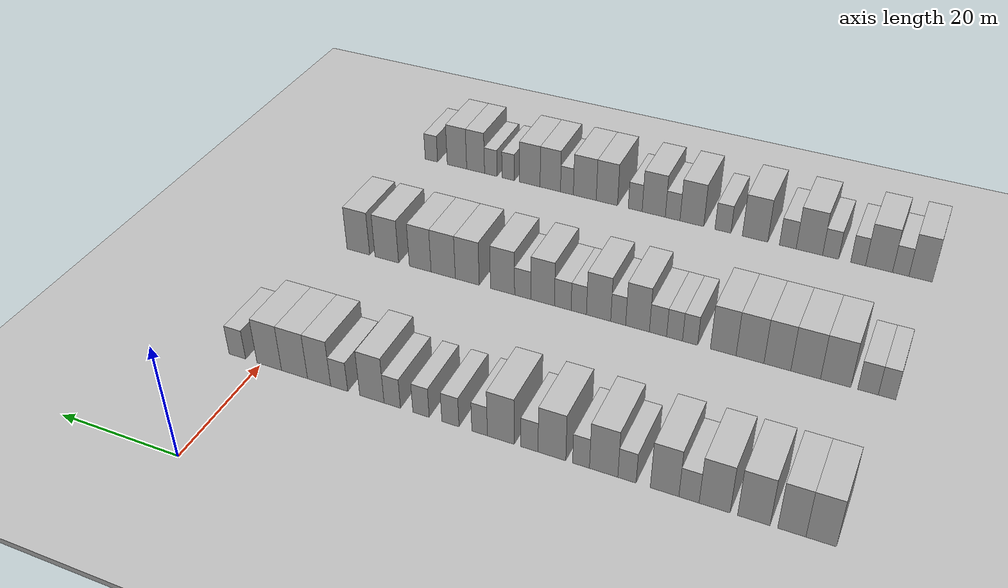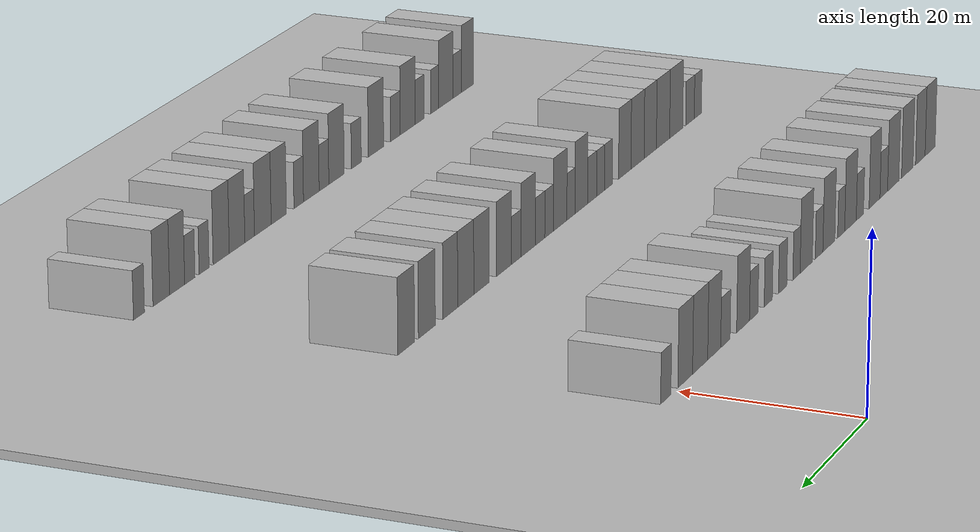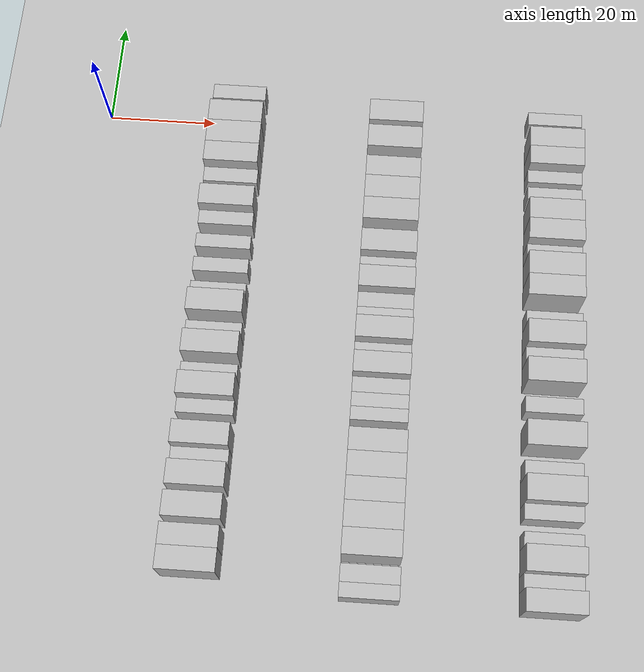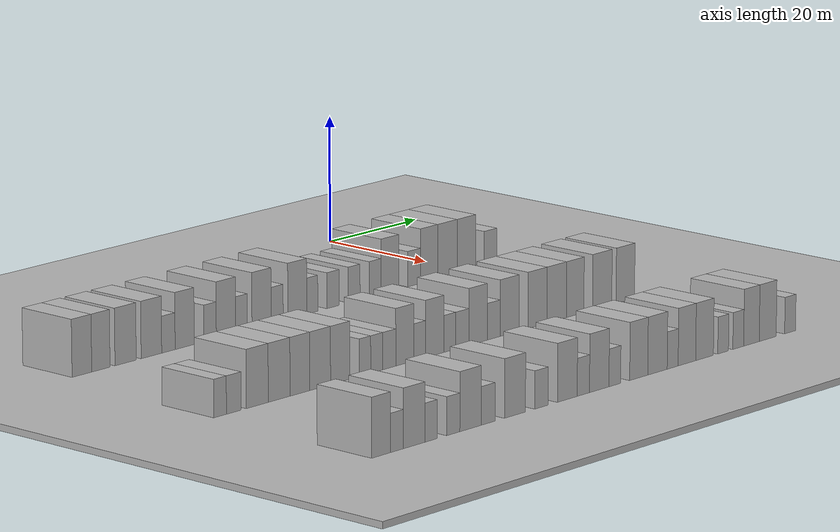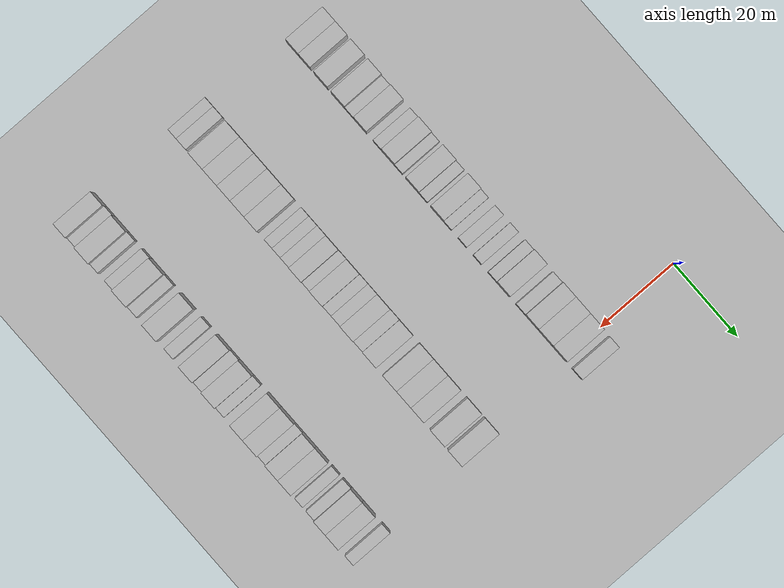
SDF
<sdf version="1.6">
 <world name="default">
  <include><name>ground_plane_1</name><uri>model://HANNAS_ground_plane</uri></include>
  <include>
   <name>ground_plane_2</name>
   <uri>model://HANNAS_ground_plane</uri>
   <pose>100 0 0  0 0 0</pose>
  </include>
  <model name="building_48">
   <static>1</static>
   <pose>25.0000 -84.4528 0 0.000000 0.000000 0.000000</pose>
   <link name="link">
    <pose>0 0 4.50 0 0 0</pose>
    <collision name="collision"><geometry><box><size>10.0000 3.9260 9.0000</size></box></geometry></collision>
    <visual name="visual">
     <cast_shadows>0</cast_shadows>
     <geometry><box><size>10.0000 3.9260 9.0000</size></box></geometry>
     <material>
      <script>
       <uri>model://HANNAS_wall/materials/scripts</uri>
       <uri>model://HANNAS_wall/materials/textures</uri>
       <name>vrc/HANNAS_wall</name>
      </script>
     </material>
    </visual>
   </link>
  </model>
  <model name="building_49">
   <static>1</static>
   <pose>25.0000 -80.6491 0 0.000000 0.000000 0.000000</pose>
   <link name="link">
    <pose>0 0 4.50 0 0 0</pose>
    <collision name="collision"><geometry><box><size>10.0000 3.6814 9.0000</size></box></geometry></collision>
    <visual name="visual">
     <cast_shadows>0</cast_shadows>
     <geometry><box><size>10.0000 3.6814 9.0000</size></box></geometry>
     <material>
      <script>
       <uri>model://HANNAS_wall/materials/scripts</uri>
       <uri>model://HANNAS_wall/materials/textures</uri>
       <name>vrc/HANNAS_wall</name>
      </script>
     </material>
    </visual>
   </link>
  </model>
  <model name="building_50">
   <static>1</static>
   <pose>25.0000 -75.6490 0 0.000000 0.000000 0.000000</pose>
   <link name="link">
    <pose>0 0 4.50 0 0 0</pose>
    <collision name="collision"><geometry><box><size>10.0000 4.3187 9.0000</size></box></geometry></collision>
    <visual name="visual">
     <cast_shadows>0</cast_shadows>
     <geometry><box><size>10.0000 4.3187 9.0000</size></box></geometry>
     <material>
      <script>
       <uri>model://HANNAS_wall/materials/scripts</uri>
       <uri>model://HANNAS_wall/materials/textures</uri>
       <name>vrc/HANNAS_wall</name>
      </script>
     </material>
    </visual>
   </link>
  </model>
  <model name="building_51">
   <static>1</static>
   <pose>25.0000 -70.3851 0 0.000000 0.000000 0.000000</pose>
   <link name="link">
    <pose>0 0 4.50 0 0 0</pose>
    <collision name="collision"><geometry><box><size>10.0000 4.2092 9.0000</size></box></geometry></collision>
    <visual name="visual">
     <cast_shadows>0</cast_shadows>
     <geometry><box><size>10.0000 4.2092 9.0000</size></box></geometry>
     <material>
      <script>
       <uri>model://HANNAS_wall/materials/scripts</uri>
       <uri>model://HANNAS_wall/materials/textures</uri>
       <name>vrc/HANNAS_wall</name>
      </script>
     </material>
    </visual>
   </link>
  </model>
  <model name="building_52">
   <static>1</static>
   <pose>25.0000 -66.8908 0 0.000000 0.000000 0.000000</pose>
   <link name="link">
    <pose>0 0 3.00 0 0 0</pose>
    <collision name="collision"><geometry><box><size>10.0000 2.7795 6.0000</size></box></geometry></collision>
    <visual name="visual">
     <cast_shadows>0</cast_shadows>
     <geometry><box><size>10.0000 2.7795 6.0000</size></box></geometry>
     <material>
      <script>
       <uri>model://HANNAS_wall/materials/scripts</uri>
       <uri>model://HANNAS_wall/materials/textures</uri>
       <name>vrc/HANNAS_wall</name>
      </script>
     </material>
    </visual>
   </link>
  </model>
  <model name="building_53">
   <static>1</static>
   <pose>25.0000 -63.5101 0 0.000000 0.000000 0.000000</pose>
   <link name="link">
    <pose>0 0 4.50 0 0 0</pose>
    <collision name="collision"><geometry><box><size>10.0000 3.9818 9.0000</size></box></geometry></collision>
    <visual name="visual">
     <cast_shadows>0</cast_shadows>
     <geometry><box><size>10.0000 3.9818 9.0000</size></box></geometry>
     <material>
      <script>
       <uri>model://HANNAS_wall/materials/scripts</uri>
       <uri>model://HANNAS_wall/materials/textures</uri>
       <name>vrc/HANNAS_wall</name>
      </script>
     </material>
    </visual>
   </link>
  </model>
  <model name="building_54">
   <static>1</static>
   <pose>25.0000 -58.2209 0 0.000000 0.000000 0.000000</pose>
   <link name="link">
    <pose>0 0 3.00 0 0 0</pose>
    <collision name="collision"><geometry><box><size>10.0000 2.5965 6.0000</size></box></geometry></collision>
    <visual name="visual">
     <cast_shadows>0</cast_shadows>
     <geometry><box><size>10.0000 2.5965 6.0000</size></box></geometry>
     <material>
      <script>
       <uri>model://HANNAS_wall/materials/scripts</uri>
       <uri>model://HANNAS_wall/materials/textures</uri>
       <name>vrc/HANNAS_wall</name>
      </script>
     </material>
    </visual>
   </link>
  </model>
  <model name="building_55">
   <static>1</static>
   <pose>25.0000 -54.8793 0 0.000000 0.000000 0.000000</pose>
   <link name="link">
    <pose>0 0 4.50 0 0 0</pose>
    <collision name="collision"><geometry><box><size>10.0000 4.0868 9.0000</size></box></geometry></collision>
    <visual name="visual">
     <cast_shadows>0</cast_shadows>
     <geometry><box><size>10.0000 4.0868 9.0000</size></box></geometry>
     <material>
      <script>
       <uri>model://HANNAS_wall/materials/scripts</uri>
       <uri>model://HANNAS_wall/materials/textures</uri>
       <name>vrc/HANNAS_wall</name>
      </script>
     </material>
    </visual>
   </link>
  </model>
  <model name="building_56">
   <static>1</static>
   <pose>25.0000 -51.6076 0 0.000000 0.000000 0.000000</pose>
   <link name="link">
    <pose>0 0 3.00 0 0 0</pose>
    <collision name="collision"><geometry><box><size>10.0000 2.4565 6.0000</size></box></geometry></collision>
    <visual name="visual">
     <cast_shadows>0</cast_shadows>
     <geometry><box><size>10.0000 2.4565 6.0000</size></box></geometry>
     <material>
      <script>
       <uri>model://HANNAS_wall/materials/scripts</uri>
       <uri>model://HANNAS_wall/materials/textures</uri>
       <name>vrc/HANNAS_wall</name>
      </script>
     </material>
    </visual>
   </link>
  </model>
  <model name="building_57">
   <static>1</static>
   <pose>25.0000 -47.3260 0 0.000000 0.000000 0.000000</pose>
   <link name="link">
    <pose>0 0 4.50 0 0 0</pose>
    <collision name="collision"><geometry><box><size>10.0000 4.1068 9.0000</size></box></geometry></collision>
    <visual name="visual">
     <cast_shadows>0</cast_shadows>
     <geometry><box><size>10.0000 4.1068 9.0000</size></box></geometry>
     <material>
      <script>
       <uri>model://HANNAS_wall/materials/scripts</uri>
       <uri>model://HANNAS_wall/materials/textures</uri>
       <name>vrc/HANNAS_wall</name>
      </script>
     </material>
    </visual>
   </link>
  </model>
  <model name="building_58">
   <static>1</static>
   <pose>25.0000 -43.9816 0 0.000000 0.000000 0.000000</pose>
   <link name="link">
    <pose>0 0 3.00 0 0 0</pose>
    <collision name="collision"><geometry><box><size>10.0000 2.5820 6.0000</size></box></geometry></collision>
    <visual name="visual">
     <cast_shadows>0</cast_shadows>
     <geometry><box><size>10.0000 2.5820 6.0000</size></box></geometry>
     <material>
      <script>
       <uri>model://HANNAS_wall/materials/scripts</uri>
       <uri>model://HANNAS_wall/materials/textures</uri>
       <name>vrc/HANNAS_wall</name>
      </script>
     </material>
    </visual>
   </link>
  </model>
  <model name="building_59">
   <static>1</static>
   <pose>25.0000 -39.6407 0 0.000000 0.000000 0.000000</pose>
   <link name="link">
    <pose>0 0 4.50 0 0 0</pose>
    <collision name="collision"><geometry><box><size>10.0000 4.0999 9.0000</size></box></geometry></collision>
    <visual name="visual">
     <cast_shadows>0</cast_shadows>
     <geometry><box><size>10.0000 4.0999 9.0000</size></box></geometry>
     <material>
      <script>
       <uri>model://HANNAS_wall/materials/scripts</uri>
       <uri>model://HANNAS_wall/materials/textures</uri>
       <name>vrc/HANNAS_wall</name>
      </script>
     </material>
    </visual>
   </link>
  </model>
  <model name="building_60">
   <static>1</static>
   <pose>25.0000 -36.3896 0 0.000000 0.000000 0.000000</pose>
   <link name="link">
    <pose>0 0 3.00 0 0 0</pose>
    <collision name="collision"><geometry><box><size>10.0000 2.4024 6.0000</size></box></geometry></collision>
    <visual name="visual">
     <cast_shadows>0</cast_shadows>
     <geometry><box><size>10.0000 2.4024 6.0000</size></box></geometry>
     <material>
      <script>
       <uri>model://HANNAS_wall/materials/scripts</uri>
       <uri>model://HANNAS_wall/materials/textures</uri>
       <name>vrc/HANNAS_wall</name>
      </script>
     </material>
    </visual>
   </link>
  </model>
  <model name="building_61">
   <static>1</static>
   <pose>25.0000 -31.8369 0 0.000000 0.000000 0.000000</pose>
   <link name="link">
    <pose>0 0 3.00 0 0 0</pose>
    <collision name="collision"><geometry><box><size>10.0000 2.7029 6.0000</size></box></geometry></collision>
    <visual name="visual">
     <cast_shadows>0</cast_shadows>
     <geometry><box><size>10.0000 2.7029 6.0000</size></box></geometry>
     <material>
      <script>
       <uri>model://HANNAS_wall/materials/scripts</uri>
       <uri>model://HANNAS_wall/materials/textures</uri>
       <name>vrc/HANNAS_wall</name>
      </script>
     </material>
    </visual>
   </link>
  </model>
  <model name="building_62">
   <static>1</static>
   <pose>25.0000 -27.1818 0 0.000000 0.000000 0.000000</pose>
   <link name="link">
    <pose>0 0 3.00 0 0 0</pose>
    <collision name="collision"><geometry><box><size>10.0000 2.6073 6.0000</size></box></geometry></collision>
    <visual name="visual">
     <cast_shadows>0</cast_shadows>
     <geometry><box><size>10.0000 2.6073 6.0000</size></box></geometry>
     <material>
      <script>
       <uri>model://HANNAS_wall/materials/scripts</uri>
       <uri>model://HANNAS_wall/materials/textures</uri>
       <name>vrc/HANNAS_wall</name>
      </script>
     </material>
    </visual>
   </link>
  </model>
  <model name="building_63">
   <static>1</static>
   <pose>25.0000 -22.5452 0 0.000000 0.000000 0.000000</pose>
   <link name="link">
    <pose>0 0 3.00 0 0 0</pose>
    <collision name="collision"><geometry><box><size>10.0000 2.6658 6.0000</size></box></geometry></collision>
    <visual name="visual">
     <cast_shadows>0</cast_shadows>
     <geometry><box><size>10.0000 2.6658 6.0000</size></box></geometry>
     <material>
      <script>
       <uri>model://HANNAS_wall/materials/scripts</uri>
       <uri>model://HANNAS_wall/materials/textures</uri>
       <name>vrc/HANNAS_wall</name>
      </script>
     </material>
    </visual>
   </link>
  </model>
  <model name="building_64">
   <static>1</static>
   <pose>25.0000 -19.2137 0 0.000000 0.000000 0.000000</pose>
   <link name="link">
    <pose>0 0 4.50 0 0 0</pose>
    <collision name="collision"><geometry><box><size>10.0000 3.9973 9.0000</size></box></geometry></collision>
    <visual name="visual">
     <cast_shadows>0</cast_shadows>
     <geometry><box><size>10.0000 3.9973 9.0000</size></box></geometry>
     <material>
      <script>
       <uri>model://HANNAS_wall/materials/scripts</uri>
       <uri>model://HANNAS_wall/materials/textures</uri>
       <name>vrc/HANNAS_wall</name>
      </script>
     </material>
    </visual>
   </link>
  </model>
  <model name="building_65">
   <static>1</static>
   <pose>25.0000 -13.7819 0 0.000000 0.000000 0.000000</pose>
   <link name="link">
    <pose>0 0 3.00 0 0 0</pose>
    <collision name="collision"><geometry><box><size>10.0000 2.8661 6.0000</size></box></geometry></collision>
    <visual name="visual">
     <cast_shadows>0</cast_shadows>
     <geometry><box><size>10.0000 2.8661 6.0000</size></box></geometry>
     <material>
      <script>
       <uri>model://HANNAS_wall/materials/scripts</uri>
       <uri>model://HANNAS_wall/materials/textures</uri>
       <name>vrc/HANNAS_wall</name>
      </script>
     </material>
    </visual>
   </link>
  </model>
  <model name="building_66">
   <static>1</static>
   <pose>25.0000 -10.3824 0 0.000000 0.000000 0.000000</pose>
   <link name="link">
    <pose>0 0 4.50 0 0 0</pose>
    <collision name="collision"><geometry><box><size>10.0000 3.9331 9.0000</size></box></geometry></collision>
    <visual name="visual">
     <cast_shadows>0</cast_shadows>
     <geometry><box><size>10.0000 3.9331 9.0000</size></box></geometry>
     <material>
      <script>
       <uri>model://HANNAS_wall/materials/scripts</uri>
       <uri>model://HANNAS_wall/materials/textures</uri>
       <name>vrc/HANNAS_wall</name>
      </script>
     </material>
    </visual>
   </link>
  </model>
  <model name="building_67">
   <static>1</static>
   <pose>25.0000 -6.1778 0 0.000000 0.000000 0.000000</pose>
   <link name="link">
    <pose>0 0 4.50 0 0 0</pose>
    <collision name="collision"><geometry><box><size>10.0000 4.4761 9.0000</size></box></geometry></collision>
    <visual name="visual">
     <cast_shadows>0</cast_shadows>
     <geometry><box><size>10.0000 4.4761 9.0000</size></box></geometry>
     <material>
      <script>
       <uri>model://HANNAS_wall/materials/scripts</uri>
       <uri>model://HANNAS_wall/materials/textures</uri>
       <name>vrc/HANNAS_wall</name>
      </script>
     </material>
    </visual>
   </link>
  </model>
  <model name="building_68">
   <static>1</static>
   <pose>25.0000 -1.7875 0 0.000000 0.000000 0.000000</pose>
   <link name="link">
    <pose>0 0 4.50 0 0 0</pose>
    <collision name="collision"><geometry><box><size>10.0000 4.3045 9.0000</size></box></geometry></collision>
    <visual name="visual">
     <cast_shadows>0</cast_shadows>
     <geometry><box><size>10.0000 4.3045 9.0000</size></box></geometry>
     <material>
      <script>
       <uri>model://HANNAS_wall/materials/scripts</uri>
       <uri>model://HANNAS_wall/materials/textures</uri>
       <name>vrc/HANNAS_wall</name>
      </script>
     </material>
    </visual>
   </link>
  </model>
  <model name="building_69">
   <static>1</static>
   <pose>25.0000 3.8394 0 0.000000 0.000000 0.000000</pose>
   <link name="link">
    <pose>0 0 3.00 0 0 0</pose>
    <collision name="collision"><geometry><box><size>10.0000 2.9492 6.0000</size></box></geometry></collision>
    <visual name="visual">
     <cast_shadows>0</cast_shadows>
     <geometry><box><size>10.0000 2.9492 6.0000</size></box></geometry>
     <material>
      <script>
       <uri>model://HANNAS_wall/materials/scripts</uri>
       <uri>model://HANNAS_wall/materials/textures</uri>
       <name>vrc/HANNAS_wall</name>
      </script>
     </material>
    </visual>
   </link>
  </model>
  <model name="building_179">
   <static>1</static>
   <pose>55.0000 -87.3339 0 0.000000 0.000000 0.000000</pose>
   <link name="link">
    <pose>0 0 3.00 0 0 0</pose>
    <collision name="collision"><geometry><box><size>10.0000 2.5084 6.0000</size></box></geometry></collision>
    <visual name="visual">
     <cast_shadows>0</cast_shadows>
     <geometry><box><size>10.0000 2.5084 6.0000</size></box></geometry>
     <material>
      <script>
       <uri>model://HANNAS_wall/materials/scripts</uri>
       <uri>model://HANNAS_wall/materials/textures</uri>
       <name>vrc/HANNAS_wall</name>
      </script>
     </material>
    </visual>
   </link>
  </model>
  <model name="building_180">
   <static>1</static>
   <pose>55.0000 -84.5908 0 0.000000 0.000000 0.000000</pose>
   <link name="link">
    <pose>0 0 3.00 0 0 0</pose>
    <collision name="collision"><geometry><box><size>10.0000 2.9777 6.0000</size></box></geometry></collision>
    <visual name="visual">
     <cast_shadows>0</cast_shadows>
     <geometry><box><size>10.0000 2.9777 6.0000</size></box></geometry>
     <material>
      <script>
       <uri>model://HANNAS_wall/materials/scripts</uri>
       <uri>model://HANNAS_wall/materials/textures</uri>
       <name>vrc/HANNAS_wall</name>
      </script>
     </material>
    </visual>
   </link>
  </model>
  <model name="building_181">
   <static>1</static>
   <pose>55.0000 -79.8754 0 0.000000 0.000000 0.000000</pose>
   <link name="link">
    <pose>0 0 4.50 0 0 0</pose>
    <collision name="collision"><geometry><box><size>10.0000 4.4532 9.0000</size></box></geometry></collision>
    <visual name="visual">
     <cast_shadows>0</cast_shadows>
     <geometry><box><size>10.0000 4.4532 9.0000</size></box></geometry>
     <material>
      <script>
       <uri>model://HANNAS_wall/materials/scripts</uri>
       <uri>model://HANNAS_wall/materials/textures</uri>
       <name>vrc/HANNAS_wall</name>
      </script>
     </material>
    </visual>
   </link>
  </model>
  <model name="building_182">
   <static>1</static>
   <pose>55.0000 -75.4326 0 0.000000 0.000000 0.000000</pose>
   <link name="link">
    <pose>0 0 4.50 0 0 0</pose>
    <collision name="collision"><geometry><box><size>10.0000 4.4323 9.0000</size></box></geometry></collision>
    <visual name="visual">
     <cast_shadows>0</cast_shadows>
     <geometry><box><size>10.0000 4.4323 9.0000</size></box></geometry>
     <material>
      <script>
       <uri>model://HANNAS_wall/materials/scripts</uri>
       <uri>model://HANNAS_wall/materials/textures</uri>
       <name>vrc/HANNAS_wall</name>
      </script>
     </material>
    </visual>
   </link>
  </model>
  <model name="building_183">
   <static>1</static>
   <pose>55.0000 -71.1804 0 0.000000 0.000000 0.000000</pose>
   <link name="link">
    <pose>0 0 4.50 0 0 0</pose>
    <collision name="collision"><geometry><box><size>10.0000 4.0722 9.0000</size></box></geometry></collision>
    <visual name="visual">
     <cast_shadows>0</cast_shadows>
     <geometry><box><size>10.0000 4.0722 9.0000</size></box></geometry>
     <material>
      <script>
       <uri>model://HANNAS_wall/materials/scripts</uri>
       <uri>model://HANNAS_wall/materials/textures</uri>
       <name>vrc/HANNAS_wall</name>
      </script>
     </material>
    </visual>
   </link>
  </model>
  <model name="building_184">
   <static>1</static>
   <pose>55.0000 -66.9999 0 0.000000 0.000000 0.000000</pose>
   <link name="link">
    <pose>0 0 4.50 0 0 0</pose>
    <collision name="collision"><geometry><box><size>10.0000 4.2887 9.0000</size></box></geometry></collision>
    <visual name="visual">
     <cast_shadows>0</cast_shadows>
     <geometry><box><size>10.0000 4.2887 9.0000</size></box></geometry>
     <material>
      <script>
       <uri>model://HANNAS_wall/materials/scripts</uri>
       <uri>model://HANNAS_wall/materials/textures</uri>
       <name>vrc/HANNAS_wall</name>
      </script>
     </material>
    </visual>
   </link>
  </model>
  <model name="building_185">
   <static>1</static>
   <pose>55.0000 -62.8555 0 0.000000 0.000000 0.000000</pose>
   <link name="link">
    <pose>0 0 4.50 0 0 0</pose>
    <collision name="collision"><geometry><box><size>10.0000 4.0001 9.0000</size></box></geometry></collision>
    <visual name="visual">
     <cast_shadows>0</cast_shadows>
     <geometry><box><size>10.0000 4.0001 9.0000</size></box></geometry>
     <material>
      <script>
       <uri>model://HANNAS_wall/materials/scripts</uri>
       <uri>model://HANNAS_wall/materials/textures</uri>
       <name>vrc/HANNAS_wall</name>
      </script>
     </material>
    </visual>
   </link>
  </model>
  <model name="building_186">
   <static>1</static>
   <pose>55.0000 -57.6517 0 0.000000 0.000000 0.000000</pose>
   <link name="link">
    <pose>0 0 3.00 0 0 0</pose>
    <collision name="collision"><geometry><box><size>10.0000 2.4075 6.0000</size></box></geometry></collision>
    <visual name="visual">
     <cast_shadows>0</cast_shadows>
     <geometry><box><size>10.0000 2.4075 6.0000</size></box></geometry>
     <material>
      <script>
       <uri>model://HANNAS_wall/materials/scripts</uri>
       <uri>model://HANNAS_wall/materials/textures</uri>
       <name>vrc/HANNAS_wall</name>
      </script>
     </material>
    </visual>
   </link>
  </model>
  <model name="building_187">
   <static>1</static>
   <pose>55.0000 -55.1774 0 0.000000 0.000000 0.000000</pose>
   <link name="link">
    <pose>0 0 3.00 0 0 0</pose>
    <collision name="collision"><geometry><box><size>10.0000 2.5412 6.0000</size></box></geometry></collision>
    <visual name="visual">
     <cast_shadows>0</cast_shadows>
     <geometry><box><size>10.0000 2.5412 6.0000</size></box></geometry>
     <material>
      <script>
       <uri>model://HANNAS_wall/materials/scripts</uri>
       <uri>model://HANNAS_wall/materials/textures</uri>
       <name>vrc/HANNAS_wall</name>
      </script>
     </material>
    </visual>
   </link>
  </model>
  <model name="building_188">
   <static>1</static>
   <pose>55.0000 -52.5172 0 0.000000 0.000000 0.000000</pose>
   <link name="link">
    <pose>0 0 3.00 0 0 0</pose>
    <collision name="collision"><geometry><box><size>10.0000 2.7793 6.0000</size></box></geometry></collision>
    <visual name="visual">
     <cast_shadows>0</cast_shadows>
     <geometry><box><size>10.0000 2.7793 6.0000</size></box></geometry>
     <material>
      <script>
       <uri>model://HANNAS_wall/materials/scripts</uri>
       <uri>model://HANNAS_wall/materials/textures</uri>
       <name>vrc/HANNAS_wall</name>
      </script>
     </material>
    </visual>
   </link>
  </model>
  <model name="building_189">
   <static>1</static>
   <pose>55.0000 -49.1889 0 0.000000 0.000000 0.000000</pose>
   <link name="link">
    <pose>0 0 4.50 0 0 0</pose>
    <collision name="collision"><geometry><box><size>10.0000 3.8774 9.0000</size></box></geometry></collision>
    <visual name="visual">
     <cast_shadows>0</cast_shadows>
     <geometry><box><size>10.0000 3.8774 9.0000</size></box></geometry>
     <material>
      <script>
       <uri>model://HANNAS_wall/materials/scripts</uri>
       <uri>model://HANNAS_wall/materials/textures</uri>
       <name>vrc/HANNAS_wall</name>
      </script>
     </material>
    </visual>
   </link>
  </model>
  <model name="building_190">
   <static>1</static>
   <pose>55.0000 -46.0195 0 0.000000 0.000000 0.000000</pose>
   <link name="link">
    <pose>0 0 3.00 0 0 0</pose>
    <collision name="collision"><geometry><box><size>10.0000 2.4613 6.0000</size></box></geometry></collision>
    <visual name="visual">
     <cast_shadows>0</cast_shadows>
     <geometry><box><size>10.0000 2.4613 6.0000</size></box></geometry>
     <material>
      <script>
       <uri>model://HANNAS_wall/materials/scripts</uri>
       <uri>model://HANNAS_wall/materials/textures</uri>
       <name>vrc/HANNAS_wall</name>
      </script>
     </material>
    </visual>
   </link>
  </model>
  <model name="building_191">
   <static>1</static>
   <pose>55.0000 -42.7622 0 0.000000 0.000000 0.000000</pose>
   <link name="link">
    <pose>0 0 4.50 0 0 0</pose>
    <collision name="collision"><geometry><box><size>10.0000 4.0533 9.0000</size></box></geometry></collision>
    <visual name="visual">
     <cast_shadows>0</cast_shadows>
     <geometry><box><size>10.0000 4.0533 9.0000</size></box></geometry>
     <material>
      <script>
       <uri>model://HANNAS_wall/materials/scripts</uri>
       <uri>model://HANNAS_wall/materials/textures</uri>
       <name>vrc/HANNAS_wall</name>
      </script>
     </material>
    </visual>
   </link>
  </model>
  <model name="building_192">
   <static>1</static>
   <pose>55.0000 -39.4451 0 0.000000 0.000000 0.000000</pose>
   <link name="link">
    <pose>0 0 3.00 0 0 0</pose>
    <collision name="collision"><geometry><box><size>10.0000 2.5809 6.0000</size></box></geometry></collision>
    <visual name="visual">
     <cast_shadows>0</cast_shadows>
     <geometry><box><size>10.0000 2.5809 6.0000</size></box></geometry>
     <material>
      <script>
       <uri>model://HANNAS_wall/materials/scripts</uri>
       <uri>model://HANNAS_wall/materials/textures</uri>
       <name>vrc/HANNAS_wall</name>
      </script>
     </material>
    </visual>
   </link>
  </model>
  <model name="building_193">
   <static>1</static>
   <pose>55.0000 -36.7395 0 0.000000 0.000000 0.000000</pose>
   <link name="link">
    <pose>0 0 3.00 0 0 0</pose>
    <collision name="collision"><geometry><box><size>10.0000 2.8303 6.0000</size></box></geometry></collision>
    <visual name="visual">
     <cast_shadows>0</cast_shadows>
     <geometry><box><size>10.0000 2.8303 6.0000</size></box></geometry>
     <material>
      <script>
       <uri>model://HANNAS_wall/materials/scripts</uri>
       <uri>model://HANNAS_wall/materials/textures</uri>
       <name>vrc/HANNAS_wall</name>
      </script>
     </material>
    </visual>
   </link>
  </model>
  <model name="building_194">
   <static>1</static>
   <pose>55.0000 -33.2910 0 0.000000 0.000000 0.000000</pose>
   <link name="link">
    <pose>0 0 4.50 0 0 0</pose>
    <collision name="collision"><geometry><box><size>10.0000 4.0667 9.0000</size></box></geometry></collision>
    <visual name="visual">
     <cast_shadows>0</cast_shadows>
     <geometry><box><size>10.0000 4.0667 9.0000</size></box></geometry>
     <material>
      <script>
       <uri>model://HANNAS_wall/materials/scripts</uri>
       <uri>model://HANNAS_wall/materials/textures</uri>
       <name>vrc/HANNAS_wall</name>
      </script>
     </material>
    </visual>
   </link>
  </model>
  <model name="building_195">
   <static>1</static>
   <pose>55.0000 -29.8455 0 0.000000 0.000000 0.000000</pose>
   <link name="link">
    <pose>0 0 3.00 0 0 0</pose>
    <collision name="collision"><geometry><box><size>10.0000 2.8243 6.0000</size></box></geometry></collision>
    <visual name="visual">
     <cast_shadows>0</cast_shadows>
     <geometry><box><size>10.0000 2.8243 6.0000</size></box></geometry>
     <material>
      <script>
       <uri>model://HANNAS_wall/materials/scripts</uri>
       <uri>model://HANNAS_wall/materials/textures</uri>
       <name>vrc/HANNAS_wall</name>
      </script>
     </material>
    </visual>
   </link>
  </model>
  <model name="building_196">
   <static>1</static>
   <pose>55.0000 -26.3149 0 0.000000 0.000000 0.000000</pose>
   <link name="link">
    <pose>0 0 4.50 0 0 0</pose>
    <collision name="collision"><geometry><box><size>10.0000 4.2370 9.0000</size></box></geometry></collision>
    <visual name="visual">
     <cast_shadows>0</cast_shadows>
     <geometry><box><size>10.0000 4.2370 9.0000</size></box></geometry>
     <material>
      <script>
       <uri>model://HANNAS_wall/materials/scripts</uri>
       <uri>model://HANNAS_wall/materials/textures</uri>
       <name>vrc/HANNAS_wall</name>
      </script>
     </material>
    </visual>
   </link>
  </model>
  <model name="building_197">
   <static>1</static>
   <pose>55.0000 -20.0473 0 0.000000 0.000000 0.000000</pose>
   <link name="link">
    <pose>0 0 4.50 0 0 0</pose>
    <collision name="collision"><geometry><box><size>10.0000 4.2982 9.0000</size></box></geometry></collision>
    <visual name="visual">
     <cast_shadows>0</cast_shadows>
     <geometry><box><size>10.0000 4.2982 9.0000</size></box></geometry>
     <material>
      <script>
       <uri>model://HANNAS_wall/materials/scripts</uri>
       <uri>model://HANNAS_wall/materials/textures</uri>
       <name>vrc/HANNAS_wall</name>
      </script>
     </material>
    </visual>
   </link>
  </model>
  <model name="building_198">
   <static>1</static>
   <pose>55.0000 -15.6903 0 0.000000 0.000000 0.000000</pose>
   <link name="link">
    <pose>0 0 4.50 0 0 0</pose>
    <collision name="collision"><geometry><box><size>10.0000 4.4159 9.0000</size></box></geometry></collision>
    <visual name="visual">
     <cast_shadows>0</cast_shadows>
     <geometry><box><size>10.0000 4.4159 9.0000</size></box></geometry>
     <material>
      <script>
       <uri>model://HANNAS_wall/materials/scripts</uri>
       <uri>model://HANNAS_wall/materials/textures</uri>
       <name>vrc/HANNAS_wall</name>
      </script>
     </material>
    </visual>
   </link>
  </model>
  <model name="building_199">
   <static>1</static>
   <pose>55.0000 -11.4758 0 0.000000 0.000000 0.000000</pose>
   <link name="link">
    <pose>0 0 4.50 0 0 0</pose>
    <collision name="collision"><geometry><box><size>10.0000 4.0132 9.0000</size></box></geometry></collision>
    <visual name="visual">
     <cast_shadows>0</cast_shadows>
     <geometry><box><size>10.0000 4.0132 9.0000</size></box></geometry>
     <material>
      <script>
       <uri>model://HANNAS_wall/materials/scripts</uri>
       <uri>model://HANNAS_wall/materials/textures</uri>
       <name>vrc/HANNAS_wall</name>
      </script>
     </material>
    </visual>
   </link>
  </model>
  <model name="building_200">
   <static>1</static>
   <pose>55.0000 -5.2403 0 0.000000 0.000000 0.000000</pose>
   <link name="link">
    <pose>0 0 4.50 0 0 0</pose>
    <collision name="collision"><geometry><box><size>10.0000 4.4578 9.0000</size></box></geometry></collision>
    <visual name="visual">
     <cast_shadows>0</cast_shadows>
     <geometry><box><size>10.0000 4.4578 9.0000</size></box></geometry>
     <material>
      <script>
       <uri>model://HANNAS_wall/materials/scripts</uri>
       <uri>model://HANNAS_wall/materials/textures</uri>
       <name>vrc/HANNAS_wall</name>
      </script>
     </material>
    </visual>
   </link>
  </model>
  <model name="building_201">
   <static>1</static>
   <pose>55.0000 0.1525 0 0.000000 0.000000 0.000000</pose>
   <link name="link">
    <pose>0 0 4.50 0 0 0</pose>
    <collision name="collision"><geometry><box><size>10.0000 4.3277 9.0000</size></box></geometry></collision>
    <visual name="visual">
     <cast_shadows>0</cast_shadows>
     <geometry><box><size>10.0000 4.3277 9.0000</size></box></geometry>
     <material>
      <script>
       <uri>model://HANNAS_wall/materials/scripts</uri>
       <uri>model://HANNAS_wall/materials/textures</uri>
       <name>vrc/HANNAS_wall</name>
      </script>
     </material>
    </visual>
   </link>
  </model>
  <model name="building_316">
   <static>1</static>
   <pose>85.0000 -87.3008 0 0.000000 0.000000 0.000000</pose>
   <link name="link">
    <pose>0 0 4.50 0 0 0</pose>
    <collision name="collision"><geometry><box><size>10.0000 3.7475 9.0000</size></box></geometry></collision>
    <visual name="visual">
     <cast_shadows>0</cast_shadows>
     <geometry><box><size>10.0000 3.7475 9.0000</size></box></geometry>
     <material>
      <script>
       <uri>model://HANNAS_wall/materials/scripts</uri>
       <uri>model://HANNAS_wall/materials/textures</uri>
       <name>vrc/HANNAS_wall</name>
      </script>
     </material>
    </visual>
   </link>
  </model>
  <model name="building_317">
   <static>1</static>
   <pose>85.0000 -84.1127 0 0.000000 0.000000 0.000000</pose>
   <link name="link">
    <pose>0 0 3.00 0 0 0</pose>
    <collision name="collision"><geometry><box><size>10.0000 2.6287 6.0000</size></box></geometry></collision>
    <visual name="visual">
     <cast_shadows>0</cast_shadows>
     <geometry><box><size>10.0000 2.6287 6.0000</size></box></geometry>
     <material>
      <script>
       <uri>model://HANNAS_wall/materials/scripts</uri>
       <uri>model://HANNAS_wall/materials/textures</uri>
       <name>vrc/HANNAS_wall</name>
      </script>
     </material>
    </visual>
   </link>
  </model>
  <model name="building_318">
   <static>1</static>
   <pose>85.0000 -80.6048 0 0.000000 0.000000 0.000000</pose>
   <link name="link">
    <pose>0 0 4.50 0 0 0</pose>
    <collision name="collision"><geometry><box><size>10.0000 4.3871 9.0000</size></box></geometry></collision>
    <visual name="visual">
     <cast_shadows>0</cast_shadows>
     <geometry><box><size>10.0000 4.3871 9.0000</size></box></geometry>
     <material>
      <script>
       <uri>model://HANNAS_wall/materials/scripts</uri>
       <uri>model://HANNAS_wall/materials/textures</uri>
       <name>vrc/HANNAS_wall</name>
      </script>
     </material>
    </visual>
   </link>
  </model>
  <model name="building_319">
   <static>1</static>
   <pose>85.0000 -77.1844 0 0.000000 0.000000 0.000000</pose>
   <link name="link">
    <pose>0 0 3.00 0 0 0</pose>
    <collision name="collision"><geometry><box><size>10.0000 2.4536 6.0000</size></box></geometry></collision>
    <visual name="visual">
     <cast_shadows>0</cast_shadows>
     <geometry><box><size>10.0000 2.4536 6.0000</size></box></geometry>
     <material>
      <script>
       <uri>model://HANNAS_wall/materials/scripts</uri>
       <uri>model://HANNAS_wall/materials/textures</uri>
       <name>vrc/HANNAS_wall</name>
      </script>
     </material>
    </visual>
   </link>
  </model>
  <model name="building_320">
   <static>1</static>
   <pose>85.0000 -72.6187 0 0.000000 0.000000 0.000000</pose>
   <link name="link">
    <pose>0 0 3.00 0 0 0</pose>
    <collision name="collision"><geometry><box><size>10.0000 2.6778 6.0000</size></box></geometry></collision>
    <visual name="visual">
     <cast_shadows>0</cast_shadows>
     <geometry><box><size>10.0000 2.6778 6.0000</size></box></geometry>
     <material>
      <script>
       <uri>model://HANNAS_wall/materials/scripts</uri>
       <uri>model://HANNAS_wall/materials/textures</uri>
       <name>vrc/HANNAS_wall</name>
      </script>
     </material>
    </visual>
   </link>
  </model>
  <model name="building_321">
   <static>1</static>
   <pose>85.0000 -69.0503 0 0.000000 0.000000 0.000000</pose>
   <link name="link">
    <pose>0 0 4.50 0 0 0</pose>
    <collision name="collision"><geometry><box><size>10.0000 4.4591 9.0000</size></box></geometry></collision>
    <visual name="visual">
     <cast_shadows>0</cast_shadows>
     <geometry><box><size>10.0000 4.4591 9.0000</size></box></geometry>
     <material>
      <script>
       <uri>model://HANNAS_wall/materials/scripts</uri>
       <uri>model://HANNAS_wall/materials/textures</uri>
       <name>vrc/HANNAS_wall</name>
      </script>
     </material>
    </visual>
   </link>
  </model>
  <model name="building_322">
   <static>1</static>
   <pose>85.0000 -65.3928 0 0.000000 0.000000 0.000000</pose>
   <link name="link">
    <pose>0 0 3.00 0 0 0</pose>
    <collision name="collision"><geometry><box><size>10.0000 2.8559 6.0000</size></box></geometry></collision>
    <visual name="visual">
     <cast_shadows>0</cast_shadows>
     <geometry><box><size>10.0000 2.8559 6.0000</size></box></geometry>
     <material>
      <script>
       <uri>model://HANNAS_wall/materials/scripts</uri>
       <uri>model://HANNAS_wall/materials/textures</uri>
       <name>vrc/HANNAS_wall</name>
      </script>
     </material>
    </visual>
   </link>
  </model>
  <model name="building_323">
   <static>1</static>
   <pose>85.0000 -59.7520 0 0.000000 0.000000 0.000000</pose>
   <link name="link">
    <pose>0 0 4.50 0 0 0</pose>
    <collision name="collision"><geometry><box><size>10.0000 4.4257 9.0000</size></box></geometry></collision>
    <visual name="visual">
     <cast_shadows>0</cast_shadows>
     <geometry><box><size>10.0000 4.4257 9.0000</size></box></geometry>
     <material>
      <script>
       <uri>model://HANNAS_wall/materials/scripts</uri>
       <uri>model://HANNAS_wall/materials/textures</uri>
       <name>vrc/HANNAS_wall</name>
      </script>
     </material>
    </visual>
   </link>
  </model>
  <model name="building_324">
   <static>1</static>
   <pose>85.0000 -54.1277 0 0.000000 0.000000 0.000000</pose>
   <link name="link">
    <pose>0 0 3.00 0 0 0</pose>
    <collision name="collision"><geometry><box><size>10.0000 2.8228 6.0000</size></box></geometry></collision>
    <visual name="visual">
     <cast_shadows>0</cast_shadows>
     <geometry><box><size>10.0000 2.8228 6.0000</size></box></geometry>
     <material>
      <script>
       <uri>model://HANNAS_wall/materials/scripts</uri>
       <uri>model://HANNAS_wall/materials/textures</uri>
       <name>vrc/HANNAS_wall</name>
      </script>
     </material>
    </visual>
   </link>
  </model>
  <model name="building_325">
   <static>1</static>
   <pose>85.0000 -48.5790 0 0.000000 0.000000 0.000000</pose>
   <link name="link">
    <pose>0 0 4.50 0 0 0</pose>
    <collision name="collision"><geometry><box><size>10.0000 4.2746 9.0000</size></box></geometry></collision>
    <visual name="visual">
     <cast_shadows>0</cast_shadows>
     <geometry><box><size>10.0000 4.2746 9.0000</size></box></geometry>
     <material>
      <script>
       <uri>model://HANNAS_wall/materials/scripts</uri>
       <uri>model://HANNAS_wall/materials/textures</uri>
       <name>vrc/HANNAS_wall</name>
      </script>
     </material>
    </visual>
   </link>
  </model>
  <model name="building_326">
   <static>1</static>
   <pose>85.0000 -45.1075 0 0.000000 0.000000 0.000000</pose>
   <link name="link">
    <pose>0 0 3.00 0 0 0</pose>
    <collision name="collision"><geometry><box><size>10.0000 2.6684 6.0000</size></box></geometry></collision>
    <visual name="visual">
     <cast_shadows>0</cast_shadows>
     <geometry><box><size>10.0000 2.6684 6.0000</size></box></geometry>
     <material>
      <script>
       <uri>model://HANNAS_wall/materials/scripts</uri>
       <uri>model://HANNAS_wall/materials/textures</uri>
       <name>vrc/HANNAS_wall</name>
      </script>
     </material>
    </visual>
   </link>
  </model>
  <model name="building_327">
   <static>1</static>
   <pose>85.0000 -41.6454 0 0.000000 0.000000 0.000000</pose>
   <link name="link">
    <pose>0 0 4.50 0 0 0</pose>
    <collision name="collision"><geometry><box><size>10.0000 4.2557 9.0000</size></box></geometry></collision>
    <visual name="visual">
     <cast_shadows>0</cast_shadows>
     <geometry><box><size>10.0000 4.2557 9.0000</size></box></geometry>
     <material>
      <script>
       <uri>model://HANNAS_wall/materials/scripts</uri>
       <uri>model://HANNAS_wall/materials/textures</uri>
       <name>vrc/HANNAS_wall</name>
      </script>
     </material>
    </visual>
   </link>
  </model>
  <model name="building_328">
   <static>1</static>
   <pose>85.0000 -38.2345 0 0.000000 0.000000 0.000000</pose>
   <link name="link">
    <pose>0 0 3.00 0 0 0</pose>
    <collision name="collision"><geometry><box><size>10.0000 2.5662 6.0000</size></box></geometry></collision>
    <visual name="visual">
     <cast_shadows>0</cast_shadows>
     <geometry><box><size>10.0000 2.5662 6.0000</size></box></geometry>
     <material>
      <script>
       <uri>model://HANNAS_wall/materials/scripts</uri>
       <uri>model://HANNAS_wall/materials/textures</uri>
       <name>vrc/HANNAS_wall</name>
      </script>
     </material>
    </visual>
   </link>
  </model>
  <model name="building_329">
   <static>1</static>
   <pose>85.0000 -32.9453 0 0.000000 0.000000 0.000000</pose>
   <link name="link">
    <pose>0 0 4.50 0 0 0</pose>
    <collision name="collision"><geometry><box><size>10.0000 4.0124 9.0000</size></box></geometry></collision>
    <visual name="visual">
     <cast_shadows>0</cast_shadows>
     <geometry><box><size>10.0000 4.0124 9.0000</size></box></geometry>
     <material>
      <script>
       <uri>model://HANNAS_wall/materials/scripts</uri>
       <uri>model://HANNAS_wall/materials/textures</uri>
       <name>vrc/HANNAS_wall</name>
      </script>
     </material>
    </visual>
   </link>
  </model>
  <model name="building_330">
   <static>1</static>
   <pose>85.0000 -28.7623 0 0.000000 0.000000 0.000000</pose>
   <link name="link">
    <pose>0 0 4.50 0 0 0</pose>
    <collision name="collision"><geometry><box><size>10.0000 4.3535 9.0000</size></box></geometry></collision>
    <visual name="visual">
     <cast_shadows>0</cast_shadows>
     <geometry><box><size>10.0000 4.3535 9.0000</size></box></geometry>
     <material>
      <script>
       <uri>model://HANNAS_wall/materials/scripts</uri>
       <uri>model://HANNAS_wall/materials/textures</uri>
       <name>vrc/HANNAS_wall</name>
      </script>
     </material>
    </visual>
   </link>
  </model>
  <model name="building_331">
   <static>1</static>
   <pose>85.0000 -25.3501 0 0.000000 0.000000 0.000000</pose>
   <link name="link">
    <pose>0 0 3.00 0 0 0</pose>
    <collision name="collision"><geometry><box><size>10.0000 2.4709 6.0000</size></box></geometry></collision>
    <visual name="visual">
     <cast_shadows>0</cast_shadows>
     <geometry><box><size>10.0000 2.4709 6.0000</size></box></geometry>
     <material>
      <script>
       <uri>model://HANNAS_wall/materials/scripts</uri>
       <uri>model://HANNAS_wall/materials/textures</uri>
       <name>vrc/HANNAS_wall</name>
      </script>
     </material>
    </visual>
   </link>
  </model>
  <model name="building_332">
   <static>1</static>
   <pose>85.0000 -22.1306 0 0.000000 0.000000 0.000000</pose>
   <link name="link">
    <pose>0 0 4.50 0 0 0</pose>
    <collision name="collision"><geometry><box><size>10.0000 3.9680 9.0000</size></box></geometry></collision>
    <visual name="visual">
     <cast_shadows>0</cast_shadows>
     <geometry><box><size>10.0000 3.9680 9.0000</size></box></geometry>
     <material>
      <script>
       <uri>model://HANNAS_wall/materials/scripts</uri>
       <uri>model://HANNAS_wall/materials/textures</uri>
       <name>vrc/HANNAS_wall</name>
      </script>
     </material>
    </visual>
   </link>
  </model>
  <model name="building_333">
   <static>1</static>
   <pose>85.0000 -18.1212 0 0.000000 0.000000 0.000000</pose>
   <link name="link">
    <pose>0 0 4.50 0 0 0</pose>
    <collision name="collision"><geometry><box><size>10.0000 4.0508 9.0000</size></box></geometry></collision>
    <visual name="visual">
     <cast_shadows>0</cast_shadows>
     <geometry><box><size>10.0000 4.0508 9.0000</size></box></geometry>
     <material>
      <script>
       <uri>model://HANNAS_wall/materials/scripts</uri>
       <uri>model://HANNAS_wall/materials/textures</uri>
       <name>vrc/HANNAS_wall</name>
      </script>
     </material>
    </visual>
   </link>
  </model>
  <model name="building_334">
   <static>1</static>
   <pose>85.0000 -13.8621 0 0.000000 0.000000 0.000000</pose>
   <link name="link">
    <pose>0 0 3.00 0 0 0</pose>
    <collision name="collision"><geometry><box><size>10.0000 2.4675 6.0000</size></box></geometry></collision>
    <visual name="visual">
     <cast_shadows>0</cast_shadows>
     <geometry><box><size>10.0000 2.4675 6.0000</size></box></geometry>
     <material>
      <script>
       <uri>model://HANNAS_wall/materials/scripts</uri>
       <uri>model://HANNAS_wall/materials/textures</uri>
       <name>vrc/HANNAS_wall</name>
      </script>
     </material>
    </visual>
   </link>
  </model>
  <model name="building_335">
   <static>1</static>
   <pose>85.0000 -10.3748 0 0.000000 0.000000 0.000000</pose>
   <link name="link">
    <pose>0 0 3.00 0 0 0</pose>
    <collision name="collision"><geometry><box><size>10.0000 2.5071 6.0000</size></box></geometry></collision>
    <visual name="visual">
     <cast_shadows>0</cast_shadows>
     <geometry><box><size>10.0000 2.5071 6.0000</size></box></geometry>
     <material>
      <script>
       <uri>model://HANNAS_wall/materials/scripts</uri>
       <uri>model://HANNAS_wall/materials/textures</uri>
       <name>vrc/HANNAS_wall</name>
      </script>
     </material>
    </visual>
   </link>
  </model>
  <model name="building_336">
   <static>1</static>
   <pose>85.0000 -7.3083 0 0.000000 0.000000 0.000000</pose>
   <link name="link">
    <pose>0 0 4.50 0 0 0</pose>
    <collision name="collision"><geometry><box><size>10.0000 3.6260 9.0000</size></box></geometry></collision>
    <visual name="visual">
     <cast_shadows>0</cast_shadows>
     <geometry><box><size>10.0000 3.6260 9.0000</size></box></geometry>
     <material>
      <script>
       <uri>model://HANNAS_wall/materials/scripts</uri>
       <uri>model://HANNAS_wall/materials/textures</uri>
       <name>vrc/HANNAS_wall</name>
      </script>
     </material>
    </visual>
   </link>
  </model>
  <model name="building_337">
   <static>1</static>
   <pose>85.0000 -3.5073 0 0.000000 0.000000 0.000000</pose>
   <link name="link">
    <pose>0 0 4.50 0 0 0</pose>
    <collision name="collision"><geometry><box><size>10.0000 3.9760 9.0000</size></box></geometry></collision>
    <visual name="visual">
     <cast_shadows>0</cast_shadows>
     <geometry><box><size>10.0000 3.9760 9.0000</size></box></geometry>
     <material>
      <script>
       <uri>model://HANNAS_wall/materials/scripts</uri>
       <uri>model://HANNAS_wall/materials/textures</uri>
       <name>vrc/HANNAS_wall</name>
      </script>
     </material>
    </visual>
   </link>
  </model>
  <model name="building_338">
   <static>1</static>
   <pose>85.0000 1.7675 0 0.000000 0.000000 0.000000</pose>
   <link name="link">
    <pose>0 0 3.00 0 0 0</pose>
    <collision name="collision"><geometry><box><size>10.0000 2.5737 6.0000</size></box></geometry></collision>
    <visual name="visual">
     <cast_shadows>0</cast_shadows>
     <geometry><box><size>10.0000 2.5737 6.0000</size></box></geometry>
     <material>
      <script>
       <uri>model://HANNAS_wall/materials/scripts</uri>
       <uri>model://HANNAS_wall/materials/textures</uri>
       <name>vrc/HANNAS_wall</name>
      </script>
     </material>
    </visual>
   </link>
  </model>
 </world>
</sdf>
